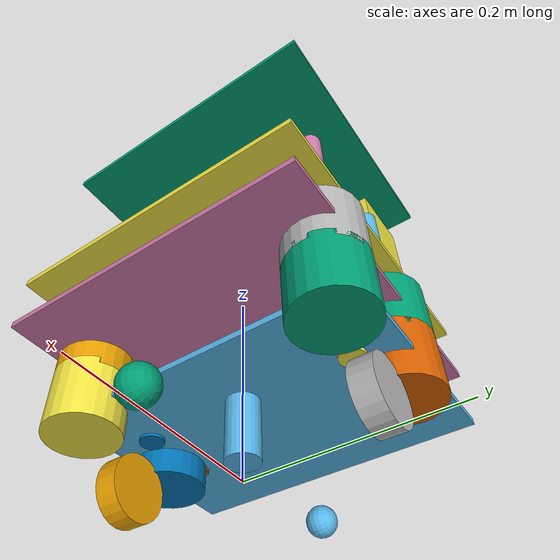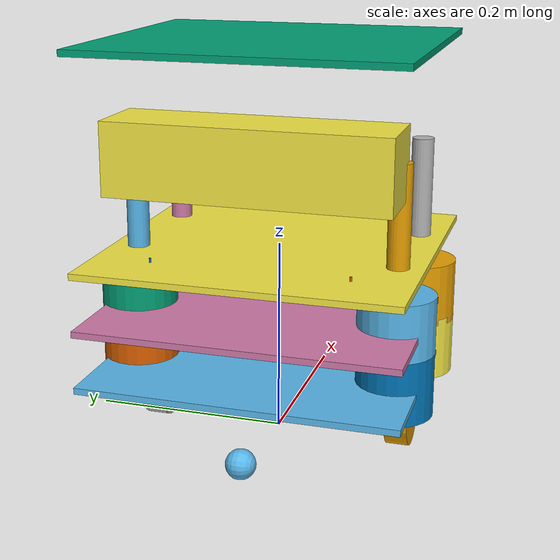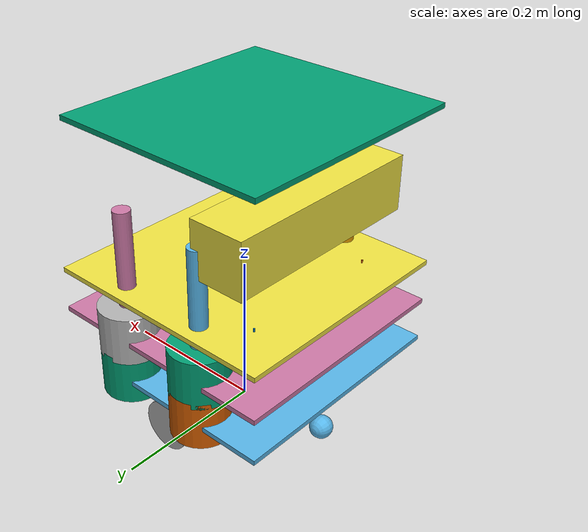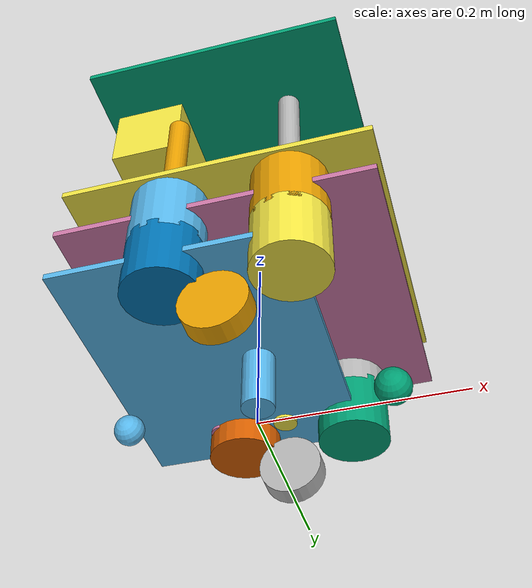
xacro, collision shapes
<?xml version="1.0"?>

<robot name="turtlebot"
       xmlns:sensor="http://playerstage.sourceforge.net/gazebo/xmlschema/#sensor"
       xmlns:controller="http://playerstage.sourceforge.net/gazebo/xmlschema/#controller"
       xmlns:interface="http://playerstage.sourceforge.net/gazebo/xmlschema/#interface"
       xmlns:xacro="http://ros.org/wiki/xacro">
  <xacro:include filename="$(find rbx1_description)/urdf/turtlebot_hardware.urdf.xacro" />
  <xacro:include filename="$(find rbx1_description)/urdf/turtlebot_body.urdf.xacro" />
  <xacro:include filename="$(find rbx1_description)/urdf/turtlebot_calibration.xacro" />
  <xacro:include filename="$(find rbx1_description)/urdf/turtlebot_kinect.urdf.xacro" />

  <property name="M_PI" value="3.14159"/>
  <property name="SCALE" value="0.0254"/>

  <!-- Body of TurtleBot, with plates, standoffs and Create (including sim sensors) -->
  <turtlebot_body/>

  <!-- Kinect frames and mounting (includes simulation) -->
  <turtlebot_kinect/>
</robot>

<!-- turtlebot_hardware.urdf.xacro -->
<robot name="turtlebot_hardware" xmlns:xacro="http://ros.org/wiki/xacro">
  <property name="M_PI" value="3.14159"/>
  <property name="M_SCALE" value="0.001"/>

  <xacro:macro name="turtlebot_spacer" params="parent number x_loc y_loc z_loc">
    <joint name="spacer_${number}_joint" type="fixed">
      <origin xyz="${x_loc} ${y_loc} ${z_loc}" rpy="0 0 0" />
      <parent link="${parent}"/>
      <child link="spacer_${number}_link" />
    </joint>

    <link name="spacer_${number}_link">
      <inertial>
        <mass value="0.001" />
        <origin xyz="0 0 0" />
        <inertia ixx="0.0001" ixy="0.0" ixz="0.0"
          iyy="0.0001" iyz="0.0"
          izz="0.0001" />
      </inertial>

      <visual>
        <origin xyz=" 0 0 0 " rpy="0 0 0" />
        <geometry>
          <mesh filename="package://rbx1_description/meshes/68-02403-125_Spacer.dae" scale="${M_SCALE} ${M_SCALE} ${M_SCALE}"/>
        </geometry>
      </visual>

      <collision>
        <origin xyz="0.0 0.0 0.0" rpy="0 0 0" />
        <geometry>
          <cylinder length="0.003175" radius=".0127"/>
        </geometry>
      </collision>
    </link>
  </xacro:macro>

  <xacro:macro name="turtlebot_standoff_1in" params="parent number x_loc y_loc z_loc">
    <joint name="standoff_1in_${number}_joint" type="fixed">
      <origin xyz="${x_loc} ${y_loc} ${z_loc}" rpy="0 0 0" />
      <parent link="${parent}"/>
      <child link="standoff_1in_${number}_link" />
    </joint>

    <link name="standoff_1in_${number}_link">
      <inertial>
        <mass value="0.001" />
        <origin xyz="0 0 0" />
        <inertia ixx="0.0001" ixy="0.0" ixz="0.0"
          iyy="0.0001" iyz="0.0"
          izz="0.0001" />
      </inertial>

      <visual>
        <origin xyz=" 0 0 0 " rpy="0 0 0" />
        <geometry>
          <mesh filename="package://rbx1_description/meshes/68-04552-1000-RA_Turtlebot_M-F_Standoff.dae" scale="${M_SCALE} ${M_SCALE} ${M_SCALE}"/>
        </geometry>
      </visual>

      <collision>
        <origin xyz="0.0 0.0 0.0" rpy="0 0 0" />
        <geometry>
          <cylinder length="0.0381" radius="0.011113"/>
        </geometry>
      </collision>
    </link>
  </xacro:macro>

  <xacro:macro name="turtlebot_standoff_2in" params="parent number x_loc y_loc z_loc">
    <joint name="standoff_2in_${number}_joint" type="fixed">
      <origin xyz="${x_loc} ${y_loc} ${z_loc}" rpy="0 0 0" />
      <parent link="${parent}"/>
      <child link="standoff_2in_${number}_link" />
    </joint>

    <link name="standoff_2in_${number}_link">
      <inertial>
        <mass value="0.001" />
        <origin xyz="0 0 0" />
        <inertia ixx="0.0001" ixy="0.0" ixz="0.0"
          iyy="0.0001" iyz="0.0"
          izz="0.0001" />
      </inertial>

      <visual>
        <origin xyz=" 0 0 0 " rpy="0 0 0" />
        <geometry>
          <mesh filename="package://rbx1_description/meshes/68-04552-2000-RA_Turtlebot_M-F_Standoff.dae" scale="${M_SCALE} ${M_SCALE} ${M_SCALE}"/>
        </geometry>
      </visual>

      <collision>
        <origin xyz="0.0 0.0 0.0" rpy="0 0 0" />
        <geometry>
          <cylinder length="0.0635" radius="0.0381"/>
        </geometry>
      </collision>
    </link>
  </xacro:macro>

  <xacro:macro name="turtlebot_standoff_8in" params="parent number x_loc y_loc z_loc">
    <joint name="standoff_8in_${number}_joint" type="fixed">
      <origin xyz="${x_loc} ${y_loc} ${z_loc}" rpy="0 0 0" />
      <parent link="${parent}"/>
      <child link="standoff_8in_${number}_link" />
    </joint>

    <link name="standoff_8in_${number}_link">
      <inertial>
        <mass value="0.001" />
        <origin xyz="0 0 0" />
        <inertia ixx="0.0001" ixy="0.0" ixz="0.0"
          iyy="0.0001" iyz="0.0"
          izz="0.0001" />
      </inertial>

      <visual>
        <origin xyz=" 0 0 0 " rpy="0 0 0" />
        <geometry>
          <mesh filename="package://rbx1_description/meshes/68-02421-8000-RA_Turtlebot_F-F_Standoff.dae" scale="${M_SCALE} ${M_SCALE} ${M_SCALE}"/>
        </geometry>
      </visual>

      <collision>
        <origin xyz="0.0 0.0 0.0" rpy="0 0 0" />
        <geometry>
          <cylinder length="0.2032" radius="0.011113"/>
        </geometry>
      </collision>
    </link>
  </xacro:macro>

  <xacro:macro name="turtlebot_standoff_kinect" params="parent number x_loc y_loc z_loc">
    <joint name="standoff_kinect_${number}_joint" type="fixed">
      <origin xyz="${x_loc} ${y_loc} ${z_loc}" rpy="0 0 0" />
      <parent link="${parent}"/>
      <child link="standoff_kinect_${number}_link" />
    </joint>

    <link name="standoff_kinect_${number}_link">
      <inertial>
        <mass value="0.001" />
        <origin xyz="0 0 0" />
        <inertia ixx="0.0001" ixy="0.0" ixz="0.0"
          iyy="0.0001" iyz="0.0"
          izz="0.0001" />
      </inertial>

      <visual>
        <origin xyz=" 0 0 0 " rpy="0 0 0" />
        <geometry>
          <mesh filename="package://rbx1_description/meshes/68-04556-RA_Kinect_Standoff_Assy.dae" scale="${M_SCALE} ${M_SCALE} ${M_SCALE}"/>
        </geometry>
      </visual>

      <collision>
        <origin xyz="0.0 0.0 0.0" rpy="0 0 0" />
        <geometry>
          <cylinder length="0.008585" radius="0.001111"/>
        </geometry>
      </collision>
    </link>
  </xacro:macro>

</robot>

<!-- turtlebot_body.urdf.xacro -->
<robot name="turtlebot_body" xmlns:xacro="http://ros.org/wiki/xacro">
  <property name="M_PI" value="3.14159"/>
  <property name="MESH_SCALE" value="100"/>

  <!-- Macro for TurtleBot body. Including Gazebo extensions, but does not include Kinect -->
  <xacro:include filename="$(find rbx1_description)/urdf/gazebo.urdf.xacro"/>

  <property name="base_x" value="0.33" />
  <property name="base_y" value="0.33" />

  <xacro:macro name="turtlebot_body">
    <material name="Green">
      <color rgba="0.0 0.8 0.0 1.0"/>
    </material>

  <!-- base_footprint is a fictitious link(frame) that is on the ground right below base_link origin, navigation stack depends on this frame -->

  <link name="base_footprint">
    <visual>
      <origin xyz="0 0 0" rpy="0 0 0" />
      <geometry>
        <box size="0.001 0.001 0.001" />
      </geometry>
      <material name="Green" />
    </visual>

    <collision>
      <origin xyz="0 0 0.017" rpy="0 0 0" />
      <geometry>
       <box size="0.001 0.001 0.001" />
      </geometry>
    </collision>
  </link>

  <link name="base_link">
    <inertial>
      <mass value="2" />
      <origin xyz="0 0 0.0" />
      <inertia ixx="0.01" ixy="0.0" ixz="0.0"
        iyy="0.01" iyz="0.0" izz="0.5" />
    </inertial>

    <visual>
      <origin xyz=" 0 0 0.0308" rpy="0 0 0" />
      <geometry>
        <mesh filename="package://rbx1_description/meshes/create_body.dae" scale="${MESH_SCALE} ${MESH_SCALE} ${MESH_SCALE}"/>
      </geometry>
    </visual>

    <collision>
      <origin xyz="0.0 0.0 0.0308" rpy="0 0 0" />
      <geometry>
        <cylinder length="0.0611632" radius="0.016495"/>
      </geometry>
    </collision>
  </link>

  <link name="wall_sensor_link">
    <inertial>
      <mass value="0.01" />
      <origin xyz="0 0 0"/>
      <inertia ixx="0.001" ixy="0.0" ixz="0.0"
        iyy="0.001" iyz="0.0" izz="0.001" />
    </inertial>
  </link>

  <link name="left_cliff_sensor_link">
    <inertial>
      <mass value="0.01" />
      <origin xyz="0 0 0"/>
      <inertia ixx="0.001" ixy="0.0" ixz="0.0"
        iyy="0.001" iyz="0.0" izz="0.001" />
    </inertial>
  </link>

  <link name="right_cliff_sensor_link">
    <inertial>
      <mass value="0.01" />
      <origin xyz="0 0 0"/>
      <inertia ixx="0.001" ixy="0.0" ixz="0.0"
        iyy="0.001" iyz="0.0" izz="0.001" />
    </inertial>
  </link>

  <link name="leftfront_cliff_sensor_link">
    <inertial>
      <mass value="0.01" />
      <origin xyz="0 0 0"/>
      <inertia ixx="1.0" ixy="0.0" ixz="0.0"
        iyy="0.01" iyz="0.0" izz="0.01" />
    </inertial>
  </link>

  <link name="rightfront_cliff_sensor_link">
    <inertial>
      <mass value="0.01" />
      <origin xyz="0 0 0"/>
      <inertia ixx="0.001" ixy="0.0" ixz="0.0"
        iyy="0.001" iyz="0.0" izz="0.001" />
    </inertial>
  </link>

  <joint name="base_footprint_joint" type="fixed">
    <origin xyz="0 0 0.017" rpy="0 0 0" />
    <parent link="base_footprint"/>
    <child link="base_link" />
  </joint>

  <joint name="base_wall_sensor_joint" type="fixed">
    <origin xyz="0.09 -0.120 0.042" rpy="0 0 -1.0" />
    <parent link="base_link"/>
    <child link="wall_sensor_link" />
  </joint>

  <joint name="base_left_cliff_sensor_joint" type="fixed">
    <origin xyz="0.07 0.14 0.01" rpy="0 1.57079 0" />
    <parent link="base_link"/>
    <child link="left_cliff_sensor_link" />
  </joint>

  <joint name="base_right_cliff_sensor_joint" type="fixed">
    <origin xyz="0.07 -0.14 0.01" rpy="0 1.57079 0" />
    <parent link="base_link"/>
    <child link="right_cliff_sensor_link" />
  </joint>

  <joint name="base_leftfront_cliff_sensor_joint" type="fixed">
    <origin xyz="0.15 0.04 0.01" rpy="0 1.57079 0" />
    <parent link="base_link"/>
    <child link="leftfront_cliff_sensor_link" />
  </joint>

  <joint name="base_rightfront_cliff_sensor_joint" type="fixed">
    <origin xyz="0.15 -0.04 0.01" rpy="0 1.57079 0" />
    <parent link="base_link"/>
    <child link="rightfront_cliff_sensor_link" />
  </joint>

  <link name="left_wheel_link">
    <inertial>
      <origin xyz="0 0 0"/>
      <mass value="0.01" />
      <inertia ixx="0.001" ixy="0.0" ixz="0.0"
        iyy="0.001" iyz="0.0" izz="0.001" />
    </inertial>

    <visual>
      <origin xyz="0 0 0" rpy="0 1.5707 1.5707" />
      <geometry>
        <cylinder radius="0.033" length = "0.023"/>
      </geometry>
    </visual>

    <collision>
      <origin xyz="0 0 0" rpy="0 1.5707 1.5707" />
      <geometry>
        <cylinder radius="0.033" length = "0.023"/>
      </geometry>
    </collision>
  </link>

  <joint name="base_l_wheel_joint" type="continuous">
    <origin xyz="0 0.13 0.015" rpy="0 0 0"/>
    <parent link="base_link"/>
    <child link="left_wheel_link"/>
    <axis xyz="0 1 0"/>
  </joint>

  <link name="right_wheel_link">
    <inertial>
      <origin xyz="0 0 0"/>
      <mass value="0.01" />
      <inertia ixx="0.001" ixy="0.0" ixz="0.0"
        iyy="0.001" iyz="0.0" izz="0.001" />
    </inertial>

    <visual>
      <origin xyz="0 0 0" rpy="0 1.5707 1.5707" />
      <geometry>
        <cylinder radius="0.033" length = "0.023"/>
      </geometry>
    </visual>

    <collision>
      <origin xyz="0 0 0" rpy="0 1.5707 1.5707" />
      <geometry>
        <cylinder radius="0.033" length = "0.023"/>
      </geometry>
    </collision>
  </link>

  <joint name="base_r_wheel_joint" type="continuous">
    <origin xyz="0 -0.13 0.015" rpy="0 0 0"/>
    <parent link="base_link"/>
    <child link="right_wheel_link"/>
    <axis xyz="0 1 0"/>
  </joint>

  <link name="rear_wheel_link">
    <inertial>
      <origin xyz="0 0 0"/>
      <mass value="0.001" />
      <inertia ixx="0.0001" ixy="0.0" ixz="0.0"
        iyy="0.0001" iyz="0.0" izz="0.0001" />
    </inertial>

    <visual>
      <origin xyz="0 0 0" rpy="0 1.5707 1.5707"/>
      <geometry>
        <sphere radius="0.015" />
      </geometry>
    </visual>

    <collision>
      <origin xyz="0 0 0" rpy="0 1.5707 1.5707" />
      <geometry>
        <sphere radius="0.015" />
      </geometry>
    </collision>
  </link>

  <!-- fixed because there's no transmission -->
  <joint name="rear_castor_joint" type="fixed">
    <origin xyz="-0.13 0 0.0" rpy="0 0 0"/>
    <parent link="base_link"/>
    <child link="rear_wheel_link"/>
    <axis xyz="0 1 0"/>
  </joint>

  <link name="front_wheel_link">
    <inertial>
      <origin xyz="0 0 0" />
      <mass value="0.01" />
      <inertia ixx="0.001" ixy="0.0" ixz="0.0"
        iyy="0.001" iyz="0.0" izz="0.001" />
    </inertial>

    <visual>
      <origin xyz="0 0 0" rpy="0 1.5707 1.5707"/>
      <geometry>
        <sphere radius="0.018" />
      </geometry>
    </visual>

    <collision>
      <origin xyz="0 0 0" rpy="0 1.5707 1.5707" />
      <geometry>
        <sphere radius="0.018" />
      </geometry>
    </collision>
  </link>

  <!-- fixed because there's no transmission -->
  <joint name="front_castor_joint" type="fixed">
    <origin xyz="0.13 0 0.0" rpy="0 0 0"/>
    <parent link="base_link"/>
    <child link="front_wheel_link"/>
    <axis xyz="0 1 0"/>
  </joint>

  <turtlebot_spacer parent="base_link" number="0" x_loc="-0.00254" y_loc="0.1114679" z_loc="0.062992"/>
  <turtlebot_spacer parent="base_link" number="1" x_loc="-0.00254" y_loc="-0.1114679" z_loc="0.062992"/>
  <turtlebot_spacer parent="base_link" number="2" x_loc="-0.07239" y_loc="-0.1114679" z_loc="0.062992"/>
  <turtlebot_spacer parent="base_link" number="3" x_loc="-0.07239" y_loc="0.1114679" z_loc="0.062992"/>

  <joint name="gyro_joint" type="fixed">
    <axis xyz="0 1 0" />
    <origin xyz="0 0 0.04" rpy="0 0 0" />
    <parent link="base_link"/>
    <child link="gyro_link"/>
  </joint>
  <link name="gyro_link">
    <inertial>
      <mass value="0.001" />
      <origin xyz="0 0 0" rpy="0 0 0" />
      <inertia ixx="0.0001" ixy="0" ixz="0" iyy="0.000001" iyz="0" izz="0.0001" />
    </inertial>
  </link>

  <joint name="laser_joint" type="fixed">
    <origin xyz="-0.065 0 0.075" rpy="0 0 0" />
    <parent link="base_link" />
    <child link="laser" />
  </joint>

  <link name="laser">
    <visual>
      <geometry>
        <box size="0.02 0.035 0.002" />
      </geometry>
      <material name="Green" />
    </visual>
    <inertial>
      <mass value="0.001" />
      <origin xyz="0 0 0" />
      <inertia ixx="0.0001" ixy="0.0" ixz="0.0"
        iyy="0.0001" iyz="0.0"
        izz="0.0001" />
    </inertial>
  </link>

  <joint name="plate_0_joint" type="fixed">
    <origin xyz="-0.04334 0  0.06775704" rpy="0 0 0" />
    <parent link="base_link"/>
    <child link="plate_0_link" />
  </joint>

  <link name="plate_0_link">
    <inertial>
      <mass value="0.01" />
      <origin xyz="0 0 0" />
      <inertia ixx="0.01" ixy="0.0" ixz="0.0"
        iyy="0.01" iyz="0.0"
        izz="0.01" />
    </inertial>

    <visual>
      <origin xyz=" 0 0 0 " rpy="0 0 0" />
      <geometry>
        <mesh filename="package://rbx1_description/meshes/plate_0_logo.dae" scale="${MESH_SCALE} ${MESH_SCALE} ${MESH_SCALE}"/>
      </geometry>
    </visual>

    <collision>
      <origin xyz="0.0 0.0 0.0" rpy="0 0 0" />
      <geometry>
        <box size="0.233502 0.314845 0.006401"/>
      </geometry>
    </collision>
  </link>

  <turtlebot_standoff_2in parent="base_link" number="0" x_loc="0.0676402" y_loc="0.1314196" z_loc="0.0709803"/>
  <turtlebot_standoff_2in parent="base_link" number="1" x_loc="0.0676402" y_loc="-0.1314196" z_loc="0.0709803"/>
  <turtlebot_standoff_2in parent="base_link" number="2" x_loc="-0.052832" y_loc="-0.1314196" z_loc="0.0709803"/>
  <turtlebot_standoff_2in parent="base_link" number="3" x_loc="-0.052832" y_loc="0.1314196" z_loc="0.0709803"/>

  <joint name="plate_1_joint" type="fixed">
    <origin xyz="0.04068 0 0.05715" rpy="0 0 0" />
    <parent link="plate_0_link"/>
    <child link="plate_1_link" />
  </joint>

  <link name="plate_1_link">
    <inertial>
      <mass value="0.1" />
      <origin xyz="0 0 0" />
      <inertia ixx="0.01" ixy="0.0" ixz="0.0"
        iyy="0.01" iyz="0.0"
        izz="0.01" />
    </inertial>

    <visual>
      <origin xyz=" 0 0 0 " rpy="0 0 0" />
      <geometry>
        <mesh filename="package://rbx1_description/meshes/plate_1_logo.dae" scale="${MESH_SCALE} ${MESH_SCALE} ${MESH_SCALE}"/>
      </geometry>
    </visual>

    <collision>
      <origin xyz="0.0 0.0 0.0" rpy="0 0 0" />
      <geometry>
        <box size="0.314856 0.314856 0.006401"/>
      </geometry>
    </collision>
  </link>

  <turtlebot_standoff_2in parent="standoff_2in_0_link" number="4" x_loc="0" y_loc="0" z_loc="0.05715"/>
  <turtlebot_standoff_2in parent="standoff_2in_1_link" number="5" x_loc="0" y_loc="0" z_loc="0.05715"/>
  <turtlebot_standoff_2in parent="standoff_2in_2_link" number="6" x_loc="0" y_loc="0" z_loc="0.05715"/>
  <turtlebot_standoff_2in parent="standoff_2in_3_link" number="7" x_loc="0" y_loc="0" z_loc="0.05715"/>

  <joint name="plate_2_joint" type="fixed">
    <origin xyz="0 0 0.0572008" rpy="0 0 0" />
    <parent link="plate_1_link"/>
    <child link="plate_2_link" />
  </joint>

  <link name="plate_2_link">
    <inertial>
      <mass value="0.01" />
      <origin xyz="0 0 0" />
      <inertia ixx="0.001" ixy="0.0" ixz="0.0"
        iyy="0.001" iyz="0.0"
        izz="0.001" />
    </inertial>

    <visual>
      <origin xyz=" 0 0 0 " rpy="0 0 0" />
      <geometry>
        <mesh filename="package://rbx1_description/meshes/plate_1_logo.dae" scale="${MESH_SCALE} ${MESH_SCALE} ${MESH_SCALE}"/>
      </geometry>
    </visual>

    <collision>
      <origin xyz="0.0 0.0 0.0" rpy="0 0 0" />
      <geometry>
        <box size="0.314856 0.314856 0.006401"/>
      </geometry>
    </collision>
  </link>

  <turtlebot_standoff_kinect parent="plate_2_link" number="0" x_loc="-0.1024382" y_loc="0.098" z_loc="0.0032004"/>
  <turtlebot_standoff_kinect parent="plate_2_link" number="1" x_loc="-0.1024382" y_loc="-0.098" z_loc="0.0032004"/>

  <turtlebot_standoff_8in parent="standoff_2in_4_link" number="0" x_loc="0" y_loc="0" z_loc="0.05715"/>
  <turtlebot_standoff_8in parent="standoff_2in_5_link" number="1" x_loc="0" y_loc="0" z_loc="0.05715"/>
  <turtlebot_standoff_8in parent="standoff_2in_6_link" number="2" x_loc="0" y_loc="0" z_loc="0.05715"/>
  <turtlebot_standoff_8in parent="standoff_2in_7_link" number="3" x_loc="0" y_loc="0" z_loc="0.05715"/>

  <joint name="plate_3_joint" type="fixed">
    <origin xyz="-0.01316 0 0.2063496" rpy="0 0 0" />
    <parent link="plate_2_link"/>
    <child link="plate_3_link" />
  </joint>

  <link name="plate_3_link">
    <inertial>
      <mass value="0.01" />
      <origin xyz="0 0 0" />
      <inertia ixx="0.0001" ixy="0.0" ixz="0.0"
        iyy="0.0001" iyz="0.0"
        izz="0.0001" />
    </inertial>

    <visual>
      <origin xyz=" 0 0 0 " rpy="0 0 0" />
      <geometry>
        <mesh filename="package://rbx1_description/meshes/plate_2_logo.dae" scale="${MESH_SCALE} ${MESH_SCALE} ${MESH_SCALE}"/>
      </geometry>
    </visual>

    <collision>
      <origin xyz="0.0 0.0 0.0" rpy="0 0 0" />
      <geometry>
        <box size="0.288 0.315 0.006401"/>
      </geometry>
    </collision>
  </link>

  <!-- Simulation sensors -->
  <turtlebot_sim_imu/>
  <turtlebot_sim_laser/>
  <turtlebot_sim_create/>
  <turtlebot_sim_wall_sensors/>
  </xacro:macro>

</robot>

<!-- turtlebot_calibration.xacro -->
<robot>

  <property name="turtlebot_calib_cam_x" value="-0.0844382" />
  <property name="turtlebot_calib_cam_y" value="0" />
  <property name="turtlebot_calib_cam_z" value="0.1047496" />
  <property name="turtlebot_calib_cam_rr" value="0" />
  <property name="turtlebot_calib_cam_rp" value="0" />
  <property name="turtlebot_calib_cam_ry" value="0" />
  <property name="turtlebot_camera_parent_name" value="plate_2_link" />

</robot>

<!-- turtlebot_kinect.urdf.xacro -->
<robot name="turtlebot_kinect" xmlns:xacro="http://ros.org/wiki/xacro">
  <property name="M_PI" value="3.14159"/>
  <property name="MESH_SCALE" value="100"/>

  <xacro:include filename="$(find rbx1_description)/urdf/gazebo.urdf.xacro"/>
  <xacro:include filename="$(find rbx1_description)/urdf/turtlebot_calibration.xacro" />

<xacro:macro name="turtlebot_kinect">
  <joint name="base_camera_joint" type="fixed">
    <origin xyz="${turtlebot_calib_cam_x} ${turtlebot_calib_cam_y} ${turtlebot_calib_cam_z}"
            rpy="${turtlebot_calib_cam_rr} ${turtlebot_calib_cam_rp} ${turtlebot_calib_cam_ry}" />
    <parent link="${turtlebot_camera_parent_name}" />
    <child link="camera_link" />
  </joint>

  <link name="camera_link">
    <inertial>
      <mass value="0.01" />
      <origin xyz="0 0 0" />
      <inertia ixx="0.001" ixy="0.0" ixz="0.0"
        iyy="0.001" iyz="0.0"
        izz="0.001" />
    </inertial>

    <visual>
      <origin xyz=" 0 0 0 " rpy="0 0 0" />
      <geometry>
        <mesh filename="package://rbx1_description/meshes/kinect.dae" scale="${MESH_SCALE} ${MESH_SCALE} ${MESH_SCALE}"/>
      </geometry>
    </visual>

    <collision>
      <origin xyz="0.0 0.0 0.0" rpy="0 0 0" />
      <geometry>
        <box size="0.0730 .2760 0.0720"/>
      </geometry>
    </collision>

  </link>

  <joint name="camera_depth_joint" type="fixed">
    <origin xyz="0 0.018 0" rpy="0 0 0" />
    <parent link="camera_link" />
    <child link="camera_depth_frame" />
  </joint>

  <link name="camera_depth_frame">
    <inertial>
      <mass value="0.01" />
      <origin xyz="0 0 0" />
      <inertia ixx="0.001" ixy="0.0" ixz="0.0"
        iyy="0.001" iyz="0.0"
        izz="0.001" />
    </inertial>
  </link>

  <joint name="camera_depth_optical_joint" type="fixed">
    <origin xyz="0 0 0" rpy="${-M_PI/2} 0 ${-M_PI/2}" />
    <parent link="camera_depth_frame" />
    <child link="camera_depth_optical_frame" />
  </joint>

  <link name="camera_depth_optical_frame">
    <inertial>
      <mass value="0.001" />
      <origin xyz="0 0 0" />
      <inertia ixx="0.0001" ixy="0.0" ixz="0.0"
        iyy="0.0001" iyz="0.0"
        izz="0.0001" />
    </inertial>
  </link>

  <joint name="camera_rgb_joint" type="fixed">
    <origin xyz="0 -0.005 0" rpy="0 0 0" />
    <parent link="camera_link" />
    <child link="camera_rgb_frame" />
  </joint>

  <link name="camera_rgb_frame">
    <inertial>
      <mass value="0.001" />
      <origin xyz="0 0 0" />
      <inertia ixx="0.0001" ixy="0.0" ixz="0.0"
        iyy="0.0001" iyz="0.0"
        izz="0.0001" />
    </inertial>
  </link>

  <joint name="camera_rgb_optical_joint" type="fixed">
    <origin xyz="0 0 0" rpy="${-M_PI/2} 0 ${-M_PI/2}" />
    <parent link="camera_rgb_frame" />
    <child link="camera_rgb_optical_frame" />
  </joint>

  <link name="camera_rgb_optical_frame">
    <inertial>
      <mass value="0.001" />
      <origin xyz="0 0 0" />
      <inertia ixx="0.0001" ixy="0.0" ixz="0.0"
        iyy="0.0001" iyz="0.0"
        izz="0.0001" />
    </inertial>
  </link>

  <!-- Kinect sensor for simulation -->
  <turtlebot_sim_kinect/>
</xacro:macro>

</robot>
